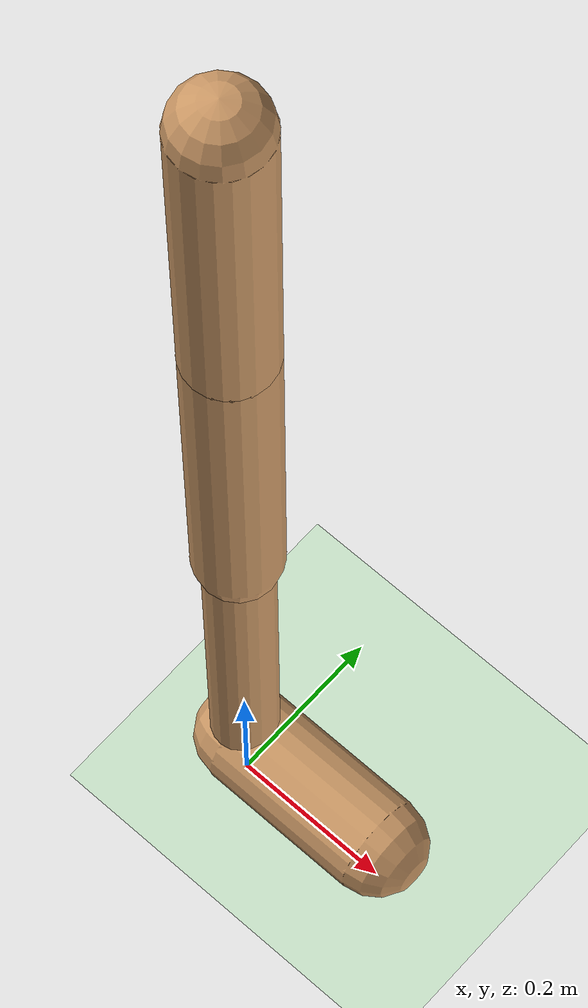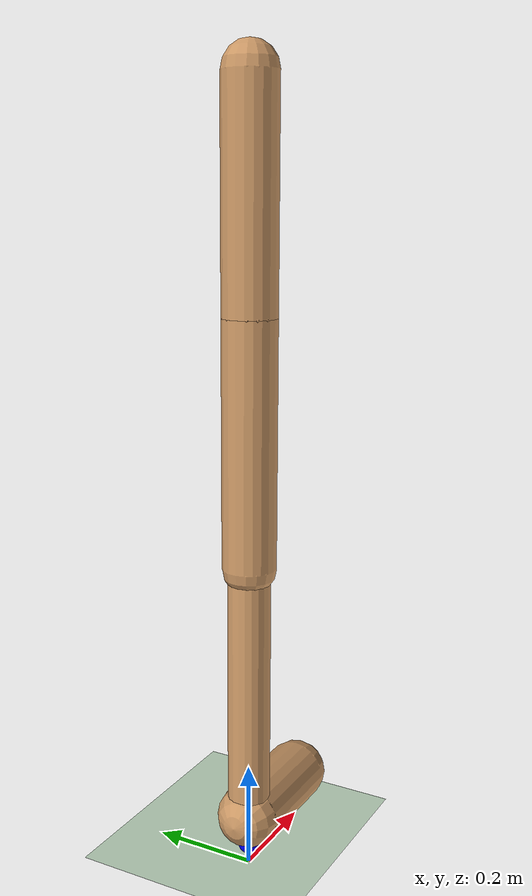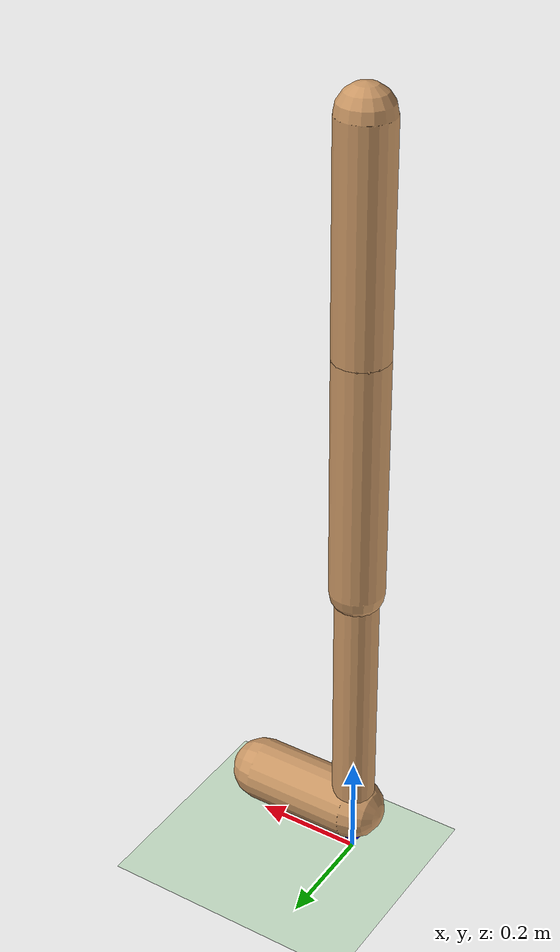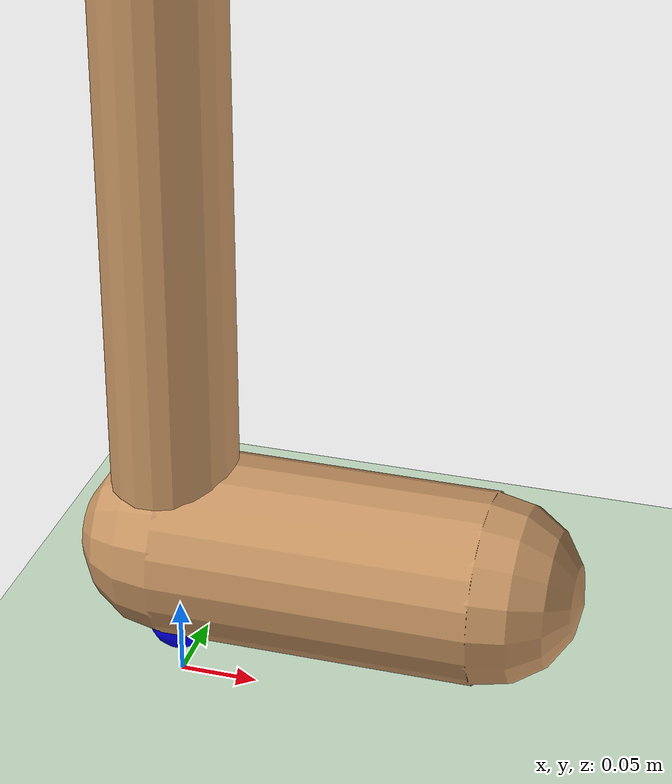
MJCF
<!-- source: https://git.dominik-roth.eu/dodox/fancy_gym/src/commit/67a5d197d9b1d7d39bbdc539d34de39e6afa56bb/fancy_gym/envs/mujoco/walker_2d_jump/assets/walker2d.xml -->
<mujoco model="walker2d">
  <compiler angle="radian" autolimits="true"/>
  <option integrator="RK4"/>
  <default class="main">
    <joint limited="true" armature="0.01" damping="0.1"/>
    <geom conaffinity="0" friction="0.7 0.1 0.1" rgba="0.8 0.6 0.4 1"/>
  </default>
  <asset>
    <texture type="skybox" builtin="gradient" rgb1="0.4 0.5 0.6" rgb2="0 0 0" width="100" height="600"/>
    <texture type="cube" name="texgeom" builtin="flat" mark="cross" rgb1="0.8 0.6 0.4" rgb2="0.8 0.6 0.4" markrgb="1 1 1" width="127" height="762"/>
    <texture type="2d" name="texplane" builtin="checker" rgb1="0 0 0" rgb2="0.8 0.8 0.8" width="100" height="100"/>
    <material name="MatPlane" texture="texplane" texrepeat="60 60" specular="1" shininess="1" reflectance="0.5"/>
    <material name="geom" texture="texgeom" texuniform="true"/>
  </asset>
  <worldbody>
    <geom name="floor" size="40 40 40" type="plane" conaffinity="1" material="MatPlane" rgba="0.8 0.9 0.8 1"/>
    <light pos="0 0 1.3" dir="0 0 -1" directional="true" cutoff="100" exponent="1" diffuse="1 1 1" specular="0.1 0.1 0.1"/>
    <body name="torso" pos="0 0 1.25" gravcomp="0">
      <joint name="rootx" pos="0 0 -1.25" axis="1 0 0" limited="false" type="slide" armature="0" damping="0"/>
      <joint name="rootz" pos="0 0 -1.25" axis="0 0 1" limited="false" type="slide" ref="1.25" armature="0" damping="0"/>
      <joint name="rooty" pos="0 0 0" axis="0 1 0" limited="false" armature="0" damping="0"/>
      <geom name="torso_geom" size="0.05 0.2" type="capsule" friction="0.9 0.1 0.1"/>
      <camera name="track" pos="0 -3 -0.25" quat="0.707107 0.707107 0 0" mode="trackcom"/>
      <body name="thigh" pos="0 0 -0.2" gravcomp="0">
        <joint name="thigh_joint" pos="0 0 0" axis="0 -1 0" range="-2.61799 0"/>
        <geom name="thigh_geom" size="0.05 0.225" pos="0 0 -0.225" type="capsule" friction="0.9 0.1 0.1"/>
        <body name="leg" pos="0 0 -0.7" gravcomp="0">
          <joint name="leg_joint" pos="0 0 0.25" axis="0 -1 0" range="-2.61799 0"/>
          <geom name="leg_geom" size="0.04 0.25" type="capsule" friction="0.9 0.1 0.1"/>
          <body name="foot" pos="0.1 0 -0.25" gravcomp="0">
            <joint name="foot_joint" pos="-0.1 0 0" axis="0 -1 0" range="-0.785398 0.785398"/>
            <geom name="foot_geom" size="0.06 0.1" quat="0.707107 0 -0.707107 0" type="capsule" friction="0.9 0.1 0.1"/>
            <site name="foot_right_site" pos="-0.1 0 -0.06" size="0.02" rgba="0 0 1 1"/>
          </body>
        </body>
      </body>
      <body name="thigh_left" pos="0 0 -0.2" gravcomp="0">
        <joint name="thigh_left_joint" pos="0 0 0" axis="0 -1 0" range="-2.61799 0"/>
        <geom name="thigh_left_geom" size="0.05 0.225" pos="0 0 -0.225" type="capsule" friction="0.9 0.1 0.1" rgba="0.7 0.3 0.6 1"/>
        <body name="leg_left" pos="0 0 -0.7" gravcomp="0">
          <joint name="leg_left_joint" pos="0 0 0.25" axis="0 -1 0" range="-2.61799 0"/>
          <geom name="leg_left_geom" size="0.04 0.25" type="capsule" friction="0.9 0.1 0.1" rgba="0.7 0.3 0.6 1"/>
          <body name="foot_left" pos="0.1 0 -0.25" gravcomp="0">
            <joint name="foot_left_joint" pos="-0.1 0 0" axis="0 -1 0" range="-0.785398 0.785398"/>
            <geom name="foot_left_geom" size="0.06 0.1" quat="0.707107 0 -0.707107 0" type="capsule" friction="1.9 0.1 0.1" rgba="0.7 0.3 0.6 1"/>
            <site name="foot_left_site" pos="-0.1 0 -0.06" size="0.02" rgba="1 0 0 1"/>
          </body>
        </body>
      </body>
    </body>
  </worldbody>
  <actuator>
    <general joint="thigh_joint" ctrlrange="-1 1" gear="100 0 0 0 0 0" actdim="0"/>
    <general joint="leg_joint" ctrlrange="-1 1" gear="100 0 0 0 0 0" actdim="0"/>
    <general joint="foot_joint" ctrlrange="-1 1" gear="100 0 0 0 0 0" actdim="0"/>
    <general joint="thigh_left_joint" ctrlrange="-1 1" gear="100 0 0 0 0 0" actdim="0"/>
    <general joint="leg_left_joint" ctrlrange="-1 1" gear="100 0 0 0 0 0" actdim="0"/>
    <general joint="foot_left_joint" ctrlrange="-1 1" gear="100 0 0 0 0 0" actdim="0"/>
  </actuator>
</mujoco>
